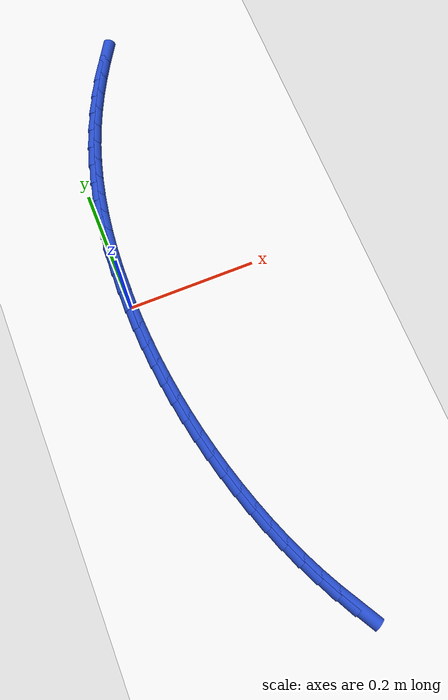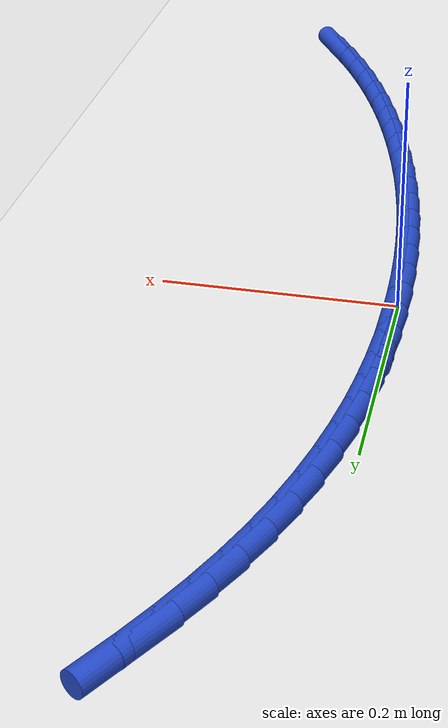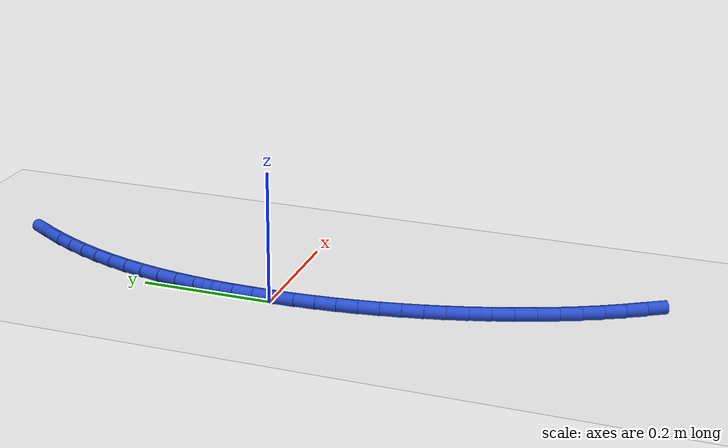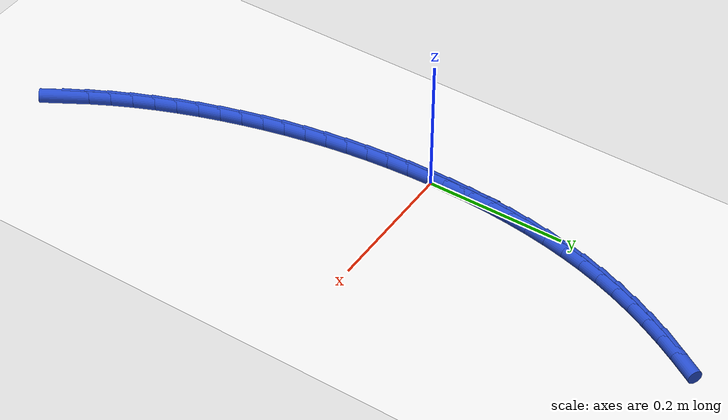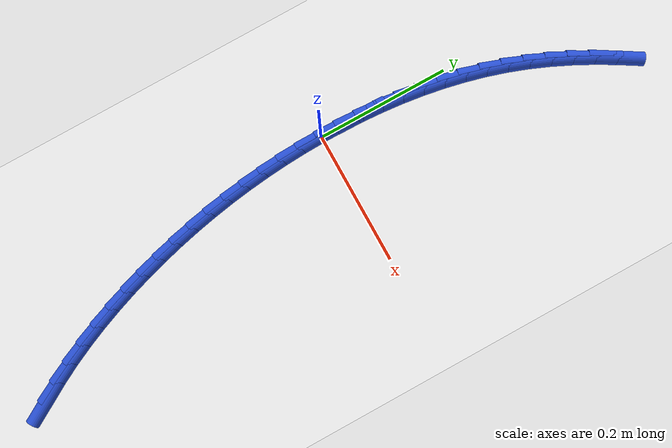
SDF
<sdf version="1.6">
 <world name="default">
  <model name="ground_plane">
   <static>1</static>
   <link name="link">
    <collision name="collision">
     <geometry><plane><normal>0 0 1</normal><size>100 100</size></plane></geometry>
     <surface><friction><ode><mu>100</mu><mu2>50</mu2></ode></friction></surface>
    </collision>
    <visual name="visual">
     <cast_shadows>0</cast_shadows>
     <geometry><plane><normal>0 0 1</normal><size>100 100</size></plane></geometry>
     <material>
      <script><uri>file://media/materials/scripts/gazebo.material</uri><name>Gazebo/WhiteGlow</name></script>
     </material>
    </visual>
   </link>
  </model>
  <model name="line">
   <link name="link_0">
    <pose>-1.3877787807814457e-17 4.163336342344337e-17 0.01 0 1.57 1.5698443958158221</pose>
    <collision name="collision">
     <geometry><cylinder><radius>0.01</radius><length>0.08</length></cylinder></geometry>
    </collision>
    <visual name="visual">
     <material>
      <script><name>Gazebo/Blue</name><uri>file://media/materials/scripts/gazebo.material</uri></script>
     </material>
     <geometry><cylinder><radius>0.01</radius><length>0.08</length></cylinder></geometry>
    </visual>
   </link>
   <link name="link_1">
    <pose>3.0045780102942897e-05 0.03156297219848614 0.01 0 1.57 1.5397682604223815</pose>
    <collision name="collision">
     <geometry><cylinder><radius>0.01</radius><length>0.08</length></cylinder></geometry>
    </collision>
    <visual name="visual">
     <material>
      <script><name>Gazebo/Blue</name><uri>file://media/materials/scripts/gazebo.material</uri></script>
     </material>
     <geometry><cylinder><radius>0.01</radius><length>0.08</length></cylinder></geometry>
    </visual>
   </link>
   <link name="link_2">
    <pose>0.001010997331743516 0.06316780115989125 0.01 0 1.57 1.507912348329897</pose>
    <collision name="collision">
     <geometry><cylinder><radius>0.01</radius><length>0.08</length></cylinder></geometry>
    </collision>
    <visual name="visual">
     <material>
      <script><name>Gazebo/Blue</name><uri>file://media/materials/scripts/gazebo.material</uri></script>
     </material>
     <geometry><cylinder><radius>0.01</radius><length>0.08</length></cylinder></geometry>
    </visual>
   </link>
   <link name="link_3">
    <pose>0.0029993892303460893 0.09474611878069684 0.01 0 1.57 1.4741468849337982</pose>
    <collision name="collision">
     <geometry><cylinder><radius>0.01</radius><length>0.08</length></cylinder></geometry>
    </collision>
    <visual name="visual">
     <material>
      <script><name>Gazebo/Blue</name><uri>file://media/materials/scripts/gazebo.material</uri></script>
     </material>
     <geometry><cylinder><radius>0.01</radius><length>0.08</length></cylinder></geometry>
    </visual>
   </link>
   <link name="link_4">
    <pose>0.006051756051335043 0.1262295569573845 0.01 0 1.57 1.4383435848633104</pose>
    <collision name="collision">
     <geometry><cylinder><radius>0.01</radius><length>0.08</length></cylinder></geometry>
    </collision>
    <visual name="visual">
     <material>
      <script><name>Gazebo/Blue</name><uri>file://media/materials/scripts/gazebo.material</uri></script>
     </material>
     <geometry><cylinder><radius>0.01</radius><length>0.08</length></cylinder></geometry>
    </visual>
   </link>
   <link name="link_5">
    <pose>0.010224632370134767 0.15754974758643575 0.01 0 1.57 1.400379091942559</pose>
    <collision name="collision">
     <geometry><cylinder><radius>0.01</radius><length>0.08</length></cylinder></geometry>
    </collision>
    <visual name="visual">
     <material>
      <script><name>Gazebo/Blue</name><uri>file://media/materials/scripts/gazebo.material</uri></script>
     </material>
     <geometry><cylinder><radius>0.01</radius><length>0.08</length></cylinder></geometry>
    </visual>
   </link>
   <link name="link_6">
    <pose>0.01557455276216965 0.18863832256433222 0.01 0 1.57 1.3601395310939663</pose>
    <collision name="collision">
     <geometry><cylinder><radius>0.01</radius><length>0.08</length></cylinder></geometry>
    </collision>
    <visual name="visual">
     <material>
      <script><name>Gazebo/Blue</name><uri>file://media/materials/scripts/gazebo.material</uri></script>
     </material>
     <geometry><cylinder><radius>0.01</radius><length>0.08</length></cylinder></geometry>
    </visual>
   </link>
   <link name="link_7">
    <pose>0.02215805180286407 0.21942691378755544 0.01 0 1.57 1.3175262920855786</pose>
    <collision name="collision">
     <geometry><cylinder><radius>0.01</radius><length>0.08</length></cylinder></geometry>
    </collision>
    <visual name="visual">
     <material>
      <script><name>Gazebo/Blue</name><uri>file://media/materials/scripts/gazebo.material</uri></script>
     </material>
     <geometry><cylinder><radius>0.01</radius><length>0.08</length></cylinder></geometry>
    </visual>
   </link>
   <link name="link_8">
    <pose>0.030031664067642398 0.24984715315258688 0.01 0 1.57 1.2724630907307373</pose>
    <collision name="collision">
     <geometry><cylinder><radius>0.01</radius><length>0.08</length></cylinder></geometry>
    </collision>
    <visual name="visual">
     <material>
      <script><name>Gazebo/Blue</name><uri>file://media/materials/scripts/gazebo.material</uri></script>
     </material>
     <geometry><cylinder><radius>0.01</radius><length>0.08</length></cylinder></geometry>
    </visual>
   </link>
   <link name="link_9">
    <pose>0.039251924131929045 0.2798306725559082 0.01 0 1.57 1.2250217477937682</pose>
    <collision name="collision">
     <geometry><cylinder><radius>0.01</radius><length>0.08</length></cylinder></geometry>
    </collision>
    <visual name="visual">
     <material>
      <script><name>Gazebo/Blue</name><uri>file://media/materials/scripts/gazebo.material</uri></script>
     </material>
     <geometry><cylinder><radius>0.01</radius><length>0.08</length></cylinder></geometry>
    </visual>
   </link>
   <link name="link_10">
    <pose>0.049872050590693454 0.3093107644458877 0.01 0 1.57 1.17796529472601</pose>
    <collision name="collision">
     <geometry><cylinder><radius>0.01</radius><length>0.08</length></cylinder></geometry>
    </collision>
    <visual name="visual">
     <material>
      <script><name>Gazebo/Blue</name><uri>file://media/materials/scripts/gazebo.material</uri></script>
     </material>
     <geometry><cylinder><radius>0.01</radius><length>0.08</length></cylinder></geometry>
    </visual>
   </link>
   <link name="link_11">
    <pose>0.061867543199253985 0.33825964073003056 0.01 0 1.57 1.1341441911589485</pose>
    <collision name="collision">
     <geometry><cylinder><radius>0.01</radius><length>0.08</length></cylinder></geometry>
    </collision>
    <visual name="visual">
     <material>
      <script><name>Gazebo/Blue</name><uri>file://media/materials/scripts/gazebo.material</uri></script>
     </material>
     <geometry><cylinder><radius>0.01</radius><length>0.08</length></cylinder></geometry>
    </visual>
   </link>
   <link name="link_12">
    <pose>0.07513536794758885 0.36668884086736925 0.01 0 1.57 1.0937105369907951</pose>
    <collision name="collision">
     <geometry><cylinder><radius>0.01</radius><length>0.08</length></cylinder></geometry>
    </collision>
    <visual name="visual">
     <material>
      <script><name>Gazebo/Blue</name><uri>file://media/materials/scripts/gazebo.material</uri></script>
     </material>
     <geometry><cylinder><radius>0.01</radius><length>0.08</length></cylinder></geometry>
    </visual>
   </link>
   <link name="link_13">
    <pose>0.08956901185452446 0.39461164649008545 0.01 0 1.57 1.0566431709803492</pose>
    <collision name="collision">
     <geometry><cylinder><radius>0.01</radius><length>0.08</length></cylinder></geometry>
    </collision>
    <visual name="visual">
     <material>
      <script><name>Gazebo/Blue</name><uri>file://media/materials/scripts/gazebo.material</uri></script>
     </material>
     <geometry><cylinder><radius>0.01</radius><length>0.08</length></cylinder></geometry>
    </visual>
   </link>
   <link name="link_14">
    <pose>0.10506196193888712 0.42204133923036036 0.01 0 1.57 1.022885207896108</pose>
    <collision name="collision">
     <geometry><cylinder><radius>0.01</radius><length>0.08</length></cylinder></geometry>
    </collision>
    <visual name="visual">
     <material>
      <script><name>Gazebo/Blue</name><uri>file://media/materials/scripts/gazebo.material</uri></script>
     </material>
     <geometry><cylinder><radius>0.01</radius><length>0.08</length></cylinder></geometry>
    </visual>
   </link>
   <link name="link_193">
    <pose>0.1384568540043733 -0.5124190368424042 0.01 0 1.57 -1.0372950694255492</pose>
    <collision name="collision">
     <geometry><cylinder><radius>0.01</radius><length>0.08</length></cylinder></geometry>
    </collision>
    <visual name="visual">
     <material>
      <script><name>Gazebo/Blue</name><uri>file://media/materials/scripts/gazebo.material</uri></script>
     </material>
     <geometry><cylinder><radius>0.01</radius><length>0.08</length></cylinder></geometry>
    </visual>
   </link>
   <link name="link_194">
    <pose>0.12256547915258259 -0.48551323015096937 0.01 0 1.57 -1.0811143958239116</pose>
    <collision name="collision">
     <geometry><cylinder><radius>0.01</radius><length>0.08</length></cylinder></geometry>
    </collision>
    <visual name="visual">
     <material>
      <script><name>Gazebo/Blue</name><uri>file://media/materials/scripts/gazebo.material</uri></script>
     </material>
     <geometry><cylinder><radius>0.01</radius><length>0.08</length></cylinder></geometry>
    </visual>
   </link>
   <link name="link_195">
    <pose>0.10775872301642508 -0.45773213946943475 0.01 0 1.57 -1.1217409839859545</pose>
    <collision name="collision">
     <geometry><cylinder><radius>0.01</radius><length>0.08</length></cylinder></geometry>
    </collision>
    <visual name="visual">
     <material>
      <script><name>Gazebo/Blue</name><uri>file://media/materials/scripts/gazebo.material</uri></script>
     </material>
     <geometry><cylinder><radius>0.01</radius><length>0.08</length></cylinder></geometry>
    </visual>
   </link>
   <link name="link_196">
    <pose>0.09400710103085227 -0.42919532110794156 0.01 0 1.57 -1.1594569832884083</pose>
    <collision name="collision">
     <geometry><cylinder><radius>0.01</radius><length>0.08</length></cylinder></geometry>
    </collision>
    <visual name="visual">
     <material>
      <script><name>Gazebo/Blue</name><uri>file://media/materials/scripts/gazebo.material</uri></script>
     </material>
     <geometry><cylinder><radius>0.01</radius><length>0.08</length></cylinder></geometry>
    </visual>
   </link>
   <link name="link_197">
    <pose>0.08128112863081648 -0.4000223313766327 0.01 0 1.57 -1.1945373949893403</pose>
    <collision name="collision">
     <geometry><cylinder><radius>0.01</radius><length>0.08</length></cylinder></geometry>
    </collision>
    <visual name="visual">
     <material>
      <script><name>Gazebo/Blue</name><uri>file://media/materials/scripts/gazebo.material</uri></script>
     </material>
     <geometry><cylinder><radius>0.01</radius><length>0.08</length></cylinder></geometry>
    </visual>
   </link>
   <link name="link_198">
    <pose>0.06955132125126914 -0.3703327265856493 0.01 0 1.57 -1.2272451359291</pose>
    <collision name="collision">
     <geometry><cylinder><radius>0.01</radius><length>0.08</length></cylinder></geometry>
    </collision>
    <visual name="visual">
     <material>
      <script><name>Gazebo/Blue</name><uri>file://media/materials/scripts/gazebo.material</uri></script>
     </material>
     <geometry><cylinder><radius>0.01</radius><length>0.08</length></cylinder></geometry>
    </visual>
   </link>
   <link name="link_199">
    <pose>0.058788194327162015 -0.3402460630451331 0.01 0 1.57 -1.257828609156464</pose>
    <collision name="collision">
     <geometry><cylinder><radius>0.01</radius><length>0.08</length></cylinder></geometry>
    </collision>
    <visual name="visual">
     <material>
      <script><name>Gazebo/Blue</name><uri>file://media/materials/scripts/gazebo.material</uri></script>
     </material>
     <geometry><cylinder><radius>0.01</radius><length>0.08</length></cylinder></geometry>
    </visual>
   </link>
   <link name="link_200">
    <pose>0.04896226329344685 -0.3098818970652259 0.01 0 1.57 -1.286562878682821</pose>
    <collision name="collision">
     <geometry><cylinder><radius>0.01</radius><length>0.08</length></cylinder></geometry>
    </collision>
    <visual name="visual">
     <material>
      <script><name>Gazebo/Blue</name><uri>file://media/materials/scripts/gazebo.material</uri></script>
     </material>
     <geometry><cylinder><radius>0.01</radius><length>0.08</length></cylinder></geometry>
    </visual>
   </link>
   <link name="link_201">
    <pose>0.04004467558509215 -0.2793572079690957 0.01 0 1.57 -1.3145646194143779</pose>
    <collision name="collision">
     <geometry><cylinder><radius>0.01</radius><length>0.08</length></cylinder></geometry>
    </collision>
    <visual name="visual">
     <material>
      <script><name>Gazebo/Blue</name><uri>file://media/materials/scripts/gazebo.material</uri></script>
     </material>
     <geometry><cylinder><radius>0.01</radius><length>0.08</length></cylinder></geometry>
    </visual>
   </link>
   <link name="link_202">
    <pose>0.03202084530926531 -0.2487308025681425 0.01 0 1.57 -1.3427704840129873</pose>
    <collision name="collision">
     <geometry><cylinder><radius>0.01</radius><length>0.08</length></cylinder></geometry>
    </collision>
    <visual name="visual">
     <material>
      <script><name>Gazebo/Blue</name><uri>file://media/materials/scripts/gazebo.material</uri></script>
     </material>
     <geometry><cylinder><radius>0.01</radius><length>0.08</length></cylinder></geometry>
    </visual>
   </link>
   <link name="link_203">
    <pose>0.024890305203562533 -0.2180039188039378 0.01 0 1.57 -1.3711748474486058</pose>
    <collision name="collision">
     <geometry><cylinder><radius>0.01</radius><length>0.08</length></cylinder></geometry>
    </collision>
    <visual name="visual">
     <material>
      <script><name>Gazebo/Blue</name><uri>file://media/materials/scripts/gazebo.material</uri></script>
     </material>
     <geometry><cylinder><radius>0.01</radius><length>0.08</length></cylinder></geometry>
    </visual>
   </link>
   <link name="link_204">
    <pose>0.018653190396232318 -0.18717533836358285 0.01 0 1.57 -1.3997302832523877</pose>
    <collision name="collision">
     <geometry><cylinder><radius>0.01</radius><length>0.08</length></cylinder></geometry>
    </collision>
    <visual name="visual">
     <material>
      <script><name>Gazebo/Blue</name><uri>file://media/materials/scripts/gazebo.material</uri></script>
     </material>
     <geometry><cylinder><radius>0.01</radius><length>0.08</length></cylinder></geometry>
    </visual>
   </link>
   <link name="link_205">
    <pose>0.013309636015523325 -0.15624384293417945 0.01 0 1.57 -1.4283878449551781</pose>
    <collision name="collision">
     <geometry><cylinder><radius>0.01</radius><length>0.08</length></cylinder></geometry>
    </collision>
    <visual name="visual">
     <material>
      <script><name>Gazebo/Blue</name><uri>file://media/materials/scripts/gazebo.material</uri></script>
     </material>
     <geometry><cylinder><radius>0.01</radius><length>0.08</length></cylinder></geometry>
    </visual>
   </link>
   <link name="link_206">
    <pose>0.008859777189684217 -0.1252082142028294 0.01 0 1.57 -1.4570975457562112</pose>
    <collision name="collision">
     <geometry><cylinder><radius>0.01</radius><length>0.08</length></cylinder></geometry>
    </collision>
    <visual name="visual">
     <material>
      <script><name>Gazebo/Blue</name><uri>file://media/materials/scripts/gazebo.material</uri></script>
     </material>
     <geometry><cylinder><radius>0.01</radius><length>0.08</length></cylinder></geometry>
    </visual>
   </link>
   <link name="link_207">
    <pose>0.0053037490469636656 -0.09406723385663465 0.01 0 1.57 -1.4858088644988934</pose>
    <collision name="collision">
     <geometry><cylinder><radius>0.01</radius><length>0.08</length></cylinder></geometry>
    </collision>
    <visual name="visual">
     <material>
      <script><name>Gazebo/Blue</name><uri>file://media/materials/scripts/gazebo.material</uri></script>
     </material>
     <geometry><cylinder><radius>0.01</radius><length>0.08</length></cylinder></geometry>
    </visual>
   </link>
   <link name="link_208">
    <pose>0.0026416867156103326 -0.06281968358269693 0.01 0 1.57 -1.5144712653129135</pose>
    <collision name="collision">
     <geometry><cylinder><radius>0.01</radius><length>0.08</length></cylinder></geometry>
    </collision>
    <visual name="visual">
     <material>
      <script><name>Gazebo/Blue</name><uri>file://media/materials/scripts/gazebo.material</uri></script>
     </material>
     <geometry><cylinder><radius>0.01</radius><length>0.08</length></cylinder></geometry>
    </visual>
   </link>
   <link name="link_209">
    <pose>0.0008737253238728562 -0.031464345068117384 0.01 0 1.57 -1.5430347176341102</pose>
    <collision name="collision">
     <geometry><cylinder><radius>0.01</radius><length>0.08</length></cylinder></geometry>
    </collision>
    <visual name="visual">
     <material>
      <script><name>Gazebo/Blue</name><uri>file://media/materials/scripts/gazebo.material</uri></script>
     </material>
     <geometry><cylinder><radius>0.01</radius><length>0.08</length></cylinder></geometry>
    </visual>
   </link>
   <link name="link_210">
    <pose>1.734723475976807e-18 -1.0408340855860843e-16 0.01 0 1.57 1.5701424502942598</pose>
    <collision name="collision">
     <geometry><cylinder><radius>0.01</radius><length>0.08</length></cylinder></geometry>
    </collision>
    <visual name="visual">
     <material>
      <script><name>Gazebo/Blue</name><uri>file://media/materials/scripts/gazebo.material</uri></script>
     </material>
     <geometry><cylinder><radius>0.01</radius><length>0.08</length></cylinder></geometry>
    </visual>
   </link>
   <link name="link_211">
    <pose>2.0645872240335206e-05 0.03157456993455534 0.01 0 1.57 1.5419224555934807</pose>
    <collision name="collision">
     <geometry><cylinder><radius>0.01</radius><length>0.08</length></cylinder></geometry>
    </collision>
    <visual name="visual">
     <material>
      <script><name>Gazebo/Blue</name><uri>file://media/materials/scripts/gazebo.material</uri></script>
     </material>
     <geometry><cylinder><radius>0.01</radius><length>0.08</length></cylinder></geometry>
    </visual>
   </link>
   <link name="link_212">
    <pose>0.0009357980688426207 0.06326058304844781 0.01 0 1.57 1.5560046544155386</pose>
    <collision name="collision">
     <geometry><cylinder><radius>0.01</radius><length>0.08</length></cylinder></geometry>
    </collision>
    <visual name="visual">
     <material>
      <script><name>Gazebo/Blue</name><uri>file://media/materials/scripts/gazebo.material</uri></script>
     </material>
     <geometry><cylinder><radius>0.01</radius><length>0.08</length></cylinder></geometry>
    </visual>
   </link>
  </model>
 </world>
</sdf>
